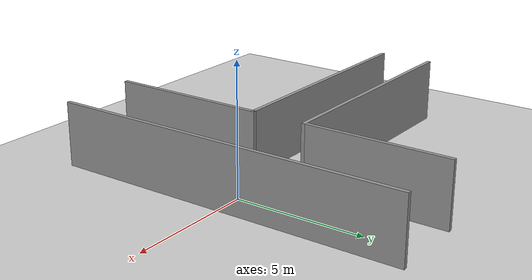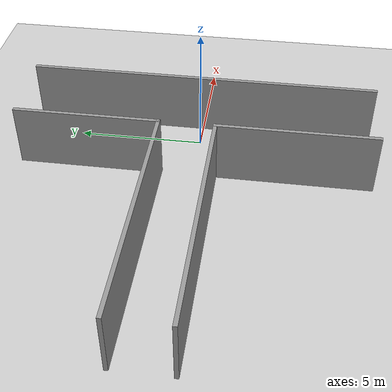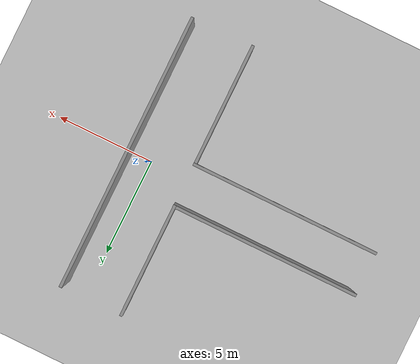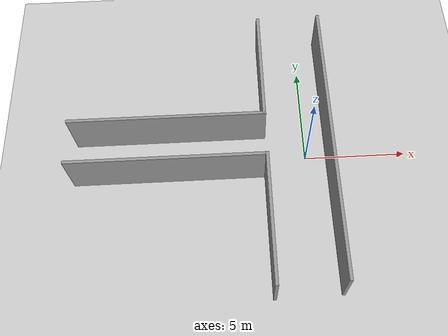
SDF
<sdf version="1.7">
 <world name="default">
  <light name="sun" type="directional">
   <pose>0 0 10 0 -0 0</pose>
   <diffuse>0.8 0.8 0.8 1</diffuse>
   <specular>0.2 0.2 0.2 1</specular>
   <attenuation>
    <range>1000</range>
    <constant>0.9</constant>
    <linear>0.01</linear>
    <quadratic>0.001</quadratic>
   </attenuation>
   <direction>-0.5 0.1 -0.9</direction>
   <spot><inner_angle>0</inner_angle><outer_angle>0</outer_angle><falloff>0</falloff></spot>
  </light>
  <model name="ground_plane">
   <static>1</static>
   <link name="link">
    <collision name="collision">
     <geometry><plane><normal>0 0 1</normal><size>100 100</size></plane></geometry>
     <surface><friction><ode><mu>100</mu><mu2>50</mu2></ode></friction></surface>
    </collision>
    <visual name="visual">
     <cast_shadows>0</cast_shadows>
     <geometry><plane><normal>0 0 1</normal><size>100 100</size></plane></geometry>
     <material>
      <script><uri>file://media/materials/scripts/gazebo.material</uri><name>Gazebo/Grey</name></script>
     </material>
    </visual>
   </link>
  </model>
  <gravity>0 0 -9.8</gravity>
  <magnetic_field>6e-06 2.3e-05 -4.2e-05</magnetic_field>
  <atmosphere type="adiabatic"/>
  <physics type="ode">
   <max_step_size>0.001</max_step_size>
   <real_time_factor>1</real_time_factor>
   <real_time_update_rate>1000</real_time_update_rate>
  </physics>
  <scene><ambient>0.4 0.4 0.4 1</ambient><background>0.7 0.7 0.7 1</background><shadows>1</shadows></scene>
  <audio><device>default</device></audio>
  <spherical_coordinates>
   <surface_model>EARTH_WGS84</surface_model>
   <latitude_deg>0</latitude_deg>
   <longitude_deg>0</longitude_deg>
   <elevation>0</elevation>
   <heading_deg>0</heading_deg>
  </spherical_coordinates>
  <model name="corridor_0">
   <pose>-5.14004 0.028178 0 0 -0 0</pose>
   <link name="Wall_11">
    <collision name="Wall_11_Collision">
     <geometry><box><size>14 0.15 2.5</size></box></geometry>
     <pose>0 0 1.25 0 -0 0</pose>
    </collision>
    <visual name="Wall_11_Visual">
     <pose>0 0 1.25 0 -0 0</pose>
     <geometry><box><size>14 0.15 2.5</size></box></geometry>
     <material>
      <script><uri>file://media/materials/scripts/gazebo.material</uri><name>Gazebo/Grey</name></script>
      <ambient>1 1 1 1</ambient>
     </material>
     <meta><layer>0</layer></meta>
    </visual>
    <pose>6.23254 0.028963 0 0 -0 -1.5708</pose>
   </link>
   <link name="Wall_2">
    <collision name="Wall_2_Collision">
     <geometry><box><size>5.75 0.15 2.5</size></box></geometry>
     <pose>0 0 1.25 0 -0 0</pose>
    </collision>
    <visual name="Wall_2_Visual">
     <pose>0 0 1.25 0 -0 0</pose>
     <geometry><box><size>5.75 0.15 2.5</size></box></geometry>
     <material>
      <script><uri>file://media/materials/scripts/gazebo.material</uri><name>Gazebo/Grey</name></script>
      <ambient>1 1 1 1</ambient>
     </material>
     <meta><layer>0</layer></meta>
    </visual>
    <pose>3.11746 4.11351 0 0 -0 -1.5708</pose>
   </link>
   <link name="Wall_3">
    <collision name="Wall_3_Collision">
     <geometry><box><size>9.5 0.15 2.5</size></box></geometry>
     <pose>0 0 1.25 0 -0 0</pose>
    </collision>
    <visual name="Wall_3_Visual">
     <pose>0 0 1.25 0 -0 0</pose>
     <geometry><box><size>9.5 0.15 2.5</size></box></geometry>
     <material>
      <script><uri>file://media/materials/scripts/gazebo.material</uri><name>Gazebo/Grey</name></script>
      <ambient>1 1 1 1</ambient>
     </material>
     <meta><layer>0</layer></meta>
    </visual>
    <pose>-1.55754 1.31351 0 0 -0 3.14159</pose>
   </link>
   <link name="Wall_5">
    <collision name="Wall_5_Collision">
     <geometry><box><size>9.5 0.15 2.5</size></box></geometry>
     <pose>0 0 1.25 0 -0 0</pose>
    </collision>
    <visual name="Wall_5_Visual">
     <pose>0 0 1.25 0 -0 0</pose>
     <geometry><box><size>9.5 0.15 2.5</size></box></geometry>
     <material>
      <script><uri>file://media/materials/scripts/gazebo.material</uri><name>Gazebo/Grey</name></script>
      <ambient>1 1 1 1</ambient>
     </material>
     <meta><layer>0</layer></meta>
    </visual>
    <pose>-1.55278 -0.853963 0 0 -0 0</pose>
   </link>
   <link name="Wall_9">
    <collision name="Wall_9_Collision">
     <geometry><box><size>6.25 0.15 2.5</size></box></geometry>
     <pose>0 0 1.25 0 -0 0</pose>
    </collision>
    <visual name="Wall_9_Visual">
     <pose>0 0 1.25 0 -0 0</pose>
     <geometry><box><size>6.25 0.15 2.5</size></box></geometry>
     <material>
      <script><uri>file://media/materials/scripts/gazebo.material</uri><name>Gazebo/Grey</name></script>
      <ambient>1 1 1 1</ambient>
     </material>
     <meta><layer>0</layer></meta>
    </visual>
    <pose>3.12222 -3.90396 0 0 -0 -1.5708</pose>
   </link>
   <static>1</static>
  </model>
 </world>
</sdf>
